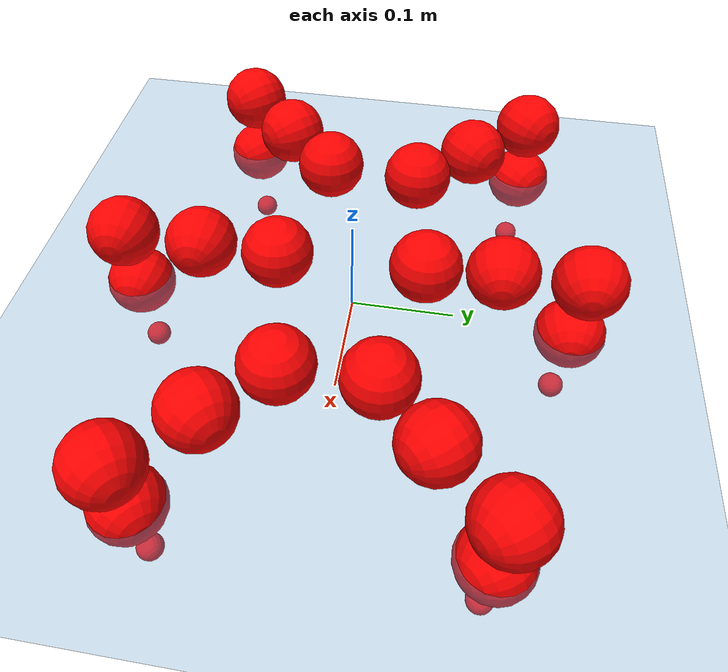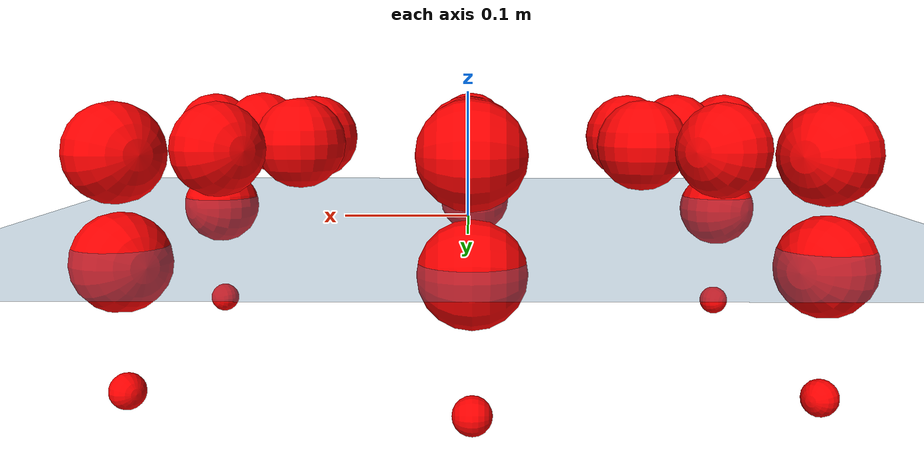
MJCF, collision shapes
<mujoco model="Golem">
  <compiler angle="radian" assetdir="assets" balanceinertia="true" inertiafromgeom="false"/>

  <option timestep="0.005" density="1.2" viscosity="2e-05"/>

  <size nkey="1"/>

  <visual>
    <quality shadowsize="8192"/>
    <map shadowclip="0.5"/>
  </visual>

  <default>
    <default class="/">
      <joint armature="0.01" damping="0.01" frictionloss="0.01"/>
      <geom contype="0" conaffinity="0" group="1" solref="-1000 -80"/>
      <site size="0.01 0.005 0.005" group="5"/>
      <general forcelimited="true" biastype="affine" gainprm="25" biasprm="0 -25 -0.5"/>
      <default class="visual">
        <geom type="mesh" group="2"/>
      </default>
      <default class="collision">
        <geom group="3"/>
      </default>
      <default class="foot">
        <geom size="0.01 0 0" condim="6" group="4" priority="1" solimp="0.015 1 0.01"/>
      </default>
      <default class="reward_collision_sphere">
        <geom group="5" rgba="1 0 0 1"/>
      </default>
    </default>
  </default>

  <asset>
    <texture type="skybox" colorspace="auto" name="//unnamed_texture_0" builtin="gradient" rgb1="0.95 0.95 0.95" rgb2="0.95 0.95 0.95" width="100" height="600"/>
    <texture type="2d" colorspace="auto" name="texplane" builtin="checker" rgb1="0.345 0.575 0.748" rgb2="0.345 0.575 0.748" markrgb="1 1 1" width="512" height="512"/>
    <material name="MatPlane" class="/" texture="texplane" texuniform="true" texrepeat="2 2" specular="0.9"/>
    <mesh name="body" class="/" file="body.stl" scale="0.001 0.001 0.001"/>
    <mesh name="coxa" class="/" file="coxa.stl" scale="0.001 0.001 0.001"/>
    <mesh name="femur" class="/" file="femur.stl" scale="0.001 0.001 0.001"/>
    <mesh name="tibia" class="/" file="tibia.stl" scale="0.001 0.001 0.001"/>
    <mesh name="tarsus" class="/" file="tarsus.stl" scale="0.001 0.001 0.001"/>
  </asset>

  <worldbody>
    <geom name="floor" class="/" size="100 100 0.125" type="plane" group="0" material="MatPlane"/>
    <light name="toplight_shadow" class="/" pos="0 0 5" dir="0.0990148 0.0990148 -0.990148" type="directional" ambient="0.04 0.04 0.04" diffuse="0.55 0.55 0.55" specular="0.12 0.12 0.12"/>
    <light name="toplight_fill" class="/" pos="0 0 5" dir="0.0990148 0.0990148 -0.990148" type="directional" castshadow="false" ambient="0.04 0.04 0.04" diffuse="0.3 0.3 0.3" specular="0.08 0.08 0.08"/>
    <body name="trunk" pos="-0.000867403 0.000126363 -0.00254664" quat="1 1.93912e-05 -5.80358e-05 2.34987e-06">
      <inertial pos="0.000608925 0.00157061 -0.00533191" quat="0.999999 0.000353096 -0.00048486 -0.00119345" mass="2.40583" diaginertia="0.00412571 0.00212181 0.0106598"/>
      <joint name="//unnamed_joint_0" type="free"/>
      <geom name="//unnamed_geom_1" class="/" pos="0 0 0.0646101" quat="1 0 0 0" type="mesh" rgba="0.9 0.9 0.9 1" mesh="body"/>
      <site name="imu" class="/" pos="0.108459 3.5983e-05 0.112213" size="0.00857567"/>
      <camera name="track" class="/" pos="0 -1.46085 0" quat="0.707107 0.707107 0 0" mode="trackcom"/>
      <camera name="ego_camera" class="/" pos="0.108256 0 0.100953" quat="-0.5 -0.5 0.5 0.5"/>
      <body name="coxa_RR" pos="-0.150067 -0.0621347 0.0648435" quat="0.382997 0.00126278 0.000113872 -0.923749">
        <inertial pos="-0.00272566 -0.0009651 0.000376357" quat="0.999934 -0.00161478 -0.0105941 0.00416335" mass="0.124952" diaginertia="0.00400604 0.00206466 0.0100775"/>
        <joint name="coxa_joint_RR" class="/" pos="0 0 0" axis="-0.000155097 -0.00290755 -0.999996" range="-3.14113 3.12076" armature="0.00892179" damping="0.0111669" frictionloss="0.00956648"/>
        <geom name="//unnamed_geom_2" class="/" type="mesh" rgba="0.2 0.2 0.2 1" mesh="coxa"/>
        <geom name="//unnamed_geom_3" class="reward_collision_sphere" size="0.0343027" pos="-0.0249822 0 0"/>
        <body name="femur_RR" pos="0.0487858 0.00133197 -5.07836e-05" quat="0.500001 -0.499999 0.499999 0.500001">
          <inertial pos="-0.000273624 0.00011922 0.00247693" quat="1 0.000590289 -1.90041e-05 -1.76655e-05" mass="0.126781" diaginertia="0.00401392 0.00209381 0.0102098"/>
          <joint name="femur_joint_RR" class="/" pos="0 0 0" axis="0.00928545 -0.00493944 -0.999945" range="-3.15869 3.14395" armature="0.00848644" damping="0.0011691" frictionloss="0.008954"/>
          <geom name="//unnamed_geom_4" class="/" type="mesh" rgba="0.9 0.9 0.9 1" mesh="femur"/>
          <geom name="//unnamed_geom_5" class="reward_collision_sphere" size="0.0343027"/>
          <body name="tibia_RR" pos="0.000752525 -0.0785346 -0.000225125" quat="3.55968e-05 1 -4.02869e-05 -3.52313e-05">
            <inertial pos="-0.000143607 0.002507 -0.00254442" quat="0.999931 -0.011467 0.00200918 0.0017145" mass="0.125316" diaginertia="0.00387835 0.00208274 0.0103227"/>
            <joint name="tibia_joint_RR" class="/" pos="0 0 0" axis="0.000371066 -0.000361207 1" stiffness="0.00216246" range="-3.13857 3.10655" armature="0.00839766" damping="0.00616895" frictionloss="0.00839532"/>
            <geom name="//unnamed_geom_6" class="/" type="mesh" rgba="0.2 0.2 0.2 1" mesh="tibia"/>
            <geom name="//unnamed_geom_7" class="reward_collision_sphere" size="0.0343027"/>
            <body name="tarsus_RR" pos="0.0735062 -0.00267421 -0.00282244" quat="0.999999 -0.00104753 0.000456394 0.000544384">
              <inertial pos="0.0487432 -0.00223393 -0.000261498" quat="0.502034 0.497161 0.502882 0.497898" mass="0.123416" diaginertia="0.00402492 0.00215568 0.0106619"/>
              <joint name="tarsus_joint_RR" class="/" pos="0 0 0" axis="-0.00171981 0.00387312 0.999991" range="-3.13563 3.13875" armature="0.00833078" damping="0" frictionloss="0.0089009"/>
              <geom name="//unnamed_geom_8" class="/" type="mesh" rgba="0.9 0.9 0.9 1" mesh="tarsus"/>
              <geom name="foot_1" class="foot" size="0.00855253" pos="0.0932669 0 0" quat="0 -0.707107 0 0.707107"/>
              <geom name="//unnamed_geom_10" class="reward_collision_sphere" size="0.0343027"/>
              <geom name="//unnamed_geom_11" class="reward_collision_sphere" size="0.0128635" pos="0.0895196 0 0"/>
              <site name="foot_1" class="foot" pos="0.0932669 0 0" quat="0 -0.707107 0 0.707107" size="0.00857567"/>
            </body>
          </body>
        </body>
      </body>
      <body name="coxa_RM" pos="0.00184178 -0.0965254 0.0638479" quat="0.707034 -0.000106457 -0.000151738 -0.70718">
        <inertial pos="1.96072e-05 -0.000944668 -0.00236741" quat="0.999989 0.00210397 -0.00390385 0.00177907" mass="0.123643" diaginertia="0.0038262 0.00197302 0.0101959"/>
        <joint name="coxa_joint_RM" class="/" pos="0 0 0" axis="-0.000171567 0.00384621 -0.999993" range="-3.13504 3.1521" armature="0.00857519" damping="0.0139751" frictionloss="0.0090456"/>
        <geom name="//unnamed_geom_12" class="/" type="mesh" rgba="0.2 0.2 0.2 1" mesh="coxa"/>
        <geom name="//unnamed_geom_13" class="reward_collision_sphere" size="0.0343027" pos="-0.0249822 0 0"/>
        <body name="femur_RM" pos="0.0500615 -0.00188338 -0.00102724" quat="0.499085 -0.500365 0.499895 0.500654">
          <inertial pos="0.000958146 -0.00131029 0.000392633" quat="0.999916 -0.00715967 0.00872264 0.00642474" mass="0.124303" diaginertia="0.0041152 0.00207453 0.0103904"/>
          <joint name="femur_joint_RM" class="/" pos="0 0 0" axis="-0.000937531 -0.0032076 -0.999994" stiffness="0.00132342" range="-3.18377 3.18349" armature="0.00969954" damping="0.0248133" frictionloss="0.00834061"/>
          <geom name="//unnamed_geom_14" class="/" type="mesh" rgba="0.9 0.9 0.9 1" mesh="femur"/>
          <geom name="//unnamed_geom_15" class="reward_collision_sphere" size="0.0343027"/>
          <body name="tibia_RM" pos="-0.00155813 -0.0779309 -0.000747064" quat="-4.96718e-05 1 2.40824e-05 0.00018521">
            <inertial pos="0.000774647 0.000384692 -0.00234853" quat="0.999945 -0.00222762 0.00986393 -0.00292334" mass="0.118856" diaginertia="0.00386777 0.00202319 0.010511"/>
            <joint name="tibia_joint_RM" class="/" pos="0 0 0" axis="-0.00260527 0.00491171 0.999985" stiffness="0.00438733" range="-3.18204 3.09472" armature="0.00763903" damping="0" frictionloss="0.00889229"/>
            <geom name="//unnamed_geom_16" class="/" type="mesh" rgba="0.2 0.2 0.2 1" mesh="tibia"/>
            <geom name="//unnamed_geom_17" class="reward_collision_sphere" size="0.0343027"/>
            <body name="tarsus_RM" pos="0.0734361 -0.00149029 0.0032023" quat="1 1.41736e-05 -4.38446e-05 4.54686e-05">
              <inertial pos="0.0502948 0.000598847 0.00047424" quat="0.497792 0.494259 0.505823 0.50205" mass="0.126401" diaginertia="0.00406132 0.00208193 0.0106381"/>
              <joint name="tarsus_joint_RM" class="/" pos="0 0 0" axis="0.00205827 0.00329615 0.999992" range="-3.13505 3.19089" armature="0.00873071" damping="0" frictionloss="0.00897342"/>
              <geom name="//unnamed_geom_18" class="/" type="mesh" rgba="0.9 0.9 0.9 1" mesh="tarsus"/>
              <geom name="foot_2" class="foot" size="0.00781844" pos="0.0932669 0 0" quat="0 -0.707107 0 0.707107"/>
              <geom name="//unnamed_geom_20" class="reward_collision_sphere" size="0.0343027"/>
              <geom name="//unnamed_geom_21" class="reward_collision_sphere" size="0.0128635" pos="0.0895196 0 0"/>
              <site name="foot_2" class="foot" pos="0.0932669 0 0" quat="0 -0.707107 0 0.707107" size="0.00857567"/>
            </body>
          </body>
        </body>
      </body>
      <body name="coxa_RF" pos="0.146982 -0.0602765 0.0642703" quat="0.924363 1.5261e-05 0.000165557 -0.381515">
        <inertial pos="0.0025428 -0.00237757 0.00128282" quat="0.999986 0.00216335 0.00208874 0.00431462" mass="0.126653" diaginertia="0.00410339 0.00206745 0.0105009"/>
        <joint name="coxa_joint_RF" class="/" pos="0 0 0" axis="-0.00428455 0.00704058 -0.999966" range="-3.13853 3.1549" armature="0.00864116" damping="0" frictionloss="0.00875787"/>
        <geom name="//unnamed_geom_22" class="/" type="mesh" rgba="0.2 0.2 0.2 1" mesh="coxa"/>
        <geom name="//unnamed_geom_23" class="reward_collision_sphere" size="0.0343027" pos="-0.0249822 0 0"/>
        <body name="femur_RF" pos="0.0497734 0.00225562 0.00231802" quat="0.499307 -0.499381 0.500936 0.500374">
          <inertial pos="-0.000422206 6.25315e-05 0.000188727" quat="0.999993 0.00318035 0.00197956 0.000164988" mass="0.12629" diaginertia="0.00400467 0.00206834 0.0104356"/>
          <joint name="femur_joint_RF" class="/" pos="0 0 0" axis="0.00493244 0.00145852 -0.999987" range="-3.13399 3.1504" armature="0.00884317" damping="0.0119723" frictionloss="0.00834159"/>
          <geom name="//unnamed_geom_24" class="/" type="mesh" rgba="0.9 0.9 0.9 1" mesh="femur"/>
          <geom name="//unnamed_geom_25" class="reward_collision_sphere" size="0.0343027"/>
          <body name="tibia_RF" pos="0.0014063 -0.0787205 5.00307e-05" quat="-0.000395951 1 0.000287918 0.000251515">
            <inertial pos="-0.000195095 -0.00189025 -0.000380721" quat="0.999999 0.000997601 -0.000742042 -0.000484021" mass="0.121796" diaginertia="0.00388785 0.00199658 0.0104599"/>
            <joint name="tibia_joint_RF" class="/" pos="0 0 0" axis="0.00420745 0.00074815 0.999991" stiffness="0.00283556" range="-3.13319 3.09379" armature="0.00851667" damping="0" frictionloss="0.00861688"/>
            <geom name="//unnamed_geom_26" class="/" type="mesh" rgba="0.2 0.2 0.2 1" mesh="tibia"/>
            <geom name="//unnamed_geom_27" class="reward_collision_sphere" size="0.0343027"/>
            <body name="tarsus_RF" pos="0.0712359 -0.00294866 0.00102218" quat="1 -0.000238992 -0.000310812 -0.000600027">
              <inertial pos="0.0492519 0.000614395 -0.00112696" quat="0.500636 0.499885 0.499673 0.499805" mass="0.128314" diaginertia="0.00401179 0.00215495 0.0106167"/>
              <joint name="tarsus_joint_RF" class="/" pos="0 0 0" axis="0.000551091 -0.00371877 0.999993" range="-3.14923 3.15946" armature="0.00814012" damping="0" frictionloss="0.00880718"/>
              <geom name="//unnamed_geom_28" class="/" type="mesh" rgba="0.9 0.9 0.9 1" mesh="tarsus"/>
              <geom name="foot_3" class="foot" size="0.00830264" pos="0.0932669 0 0" quat="0 -0.707107 0 0.707107"/>
              <geom name="//unnamed_geom_30" class="reward_collision_sphere" size="0.0343027"/>
              <geom name="//unnamed_geom_31" class="reward_collision_sphere" size="0.0128635" pos="0.0895196 0 0"/>
              <site name="foot_3" class="foot" pos="0.0932669 0 0" quat="0 -0.707107 0 0.707107" size="0.00857567"/>
            </body>
          </body>
        </body>
      </body>
      <body name="coxa_LR" pos="-0.148998 0.0648187 0.0627687" quat="0.382801 -0.000108361 0.00010155 0.923831">
        <inertial pos="0.000467326 0.000421545 -0.00144005" quat="0.999969 -0.00705984 0.0034239 0.000174964" mass="0.122548" diaginertia="0.00387107 0.0020611 0.0101998"/>
        <joint name="coxa_joint_LR" class="/" pos="0 0 0" axis="0.00352696 -0.00423756 -0.999985" stiffness="0.00400678" range="-3.13546 3.15259" armature="0.00836893" damping="0.0163451" frictionloss="0.0093879"/>
        <geom name="//unnamed_geom_32" class="/" type="mesh" rgba="0.2 0.2 0.2 1" mesh="coxa"/>
        <geom name="//unnamed_geom_33" class="reward_collision_sphere" size="0.0343027" pos="-0.0249822 0 0"/>
        <body name="femur_LR" pos="0.0487751 -0.00364531 -7.61399e-05" quat="0.499652 -0.500361 0.499676 0.50031">
          <inertial pos="-0.000558602 -2.55577e-05 -0.00281423" quat="0.999998 -0.000877174 -0.00147609 -0.000896622" mass="0.122964" diaginertia="0.00388325 0.00201395 0.0101271"/>
          <joint name="femur_joint_LR" class="/" pos="0 0 0" axis="-0.00822633 0.0101973 0.999914" range="-3.14723 3.1372" armature="0.00902931" damping="0.0102796" frictionloss="0.00877656"/>
          <geom name="//unnamed_geom_34" class="/" type="mesh" rgba="0.9 0.9 0.9 1" mesh="femur"/>
          <geom name="//unnamed_geom_35" class="reward_collision_sphere" size="0.0343027"/>
          <body name="tibia_LR" pos="-0.00119374 -0.0801128 -0.00222274" quat="7.51314e-05 1 5.06346e-05 -5.04327e-05">
            <inertial pos="-1.1988e-05 0.00248613 -0.000474015" quat="0.999986 -0.0014405 0.00268111 0.00428193" mass="0.127452" diaginertia="0.00391617 0.0020988 0.0108859"/>
            <joint name="tibia_joint_LR" class="/" pos="0 0 0" axis="0.00435721 0.0115431 -0.999924" range="-3.09852 3.08632" armature="0.00969645" damping="0" frictionloss="0.00917463"/>
            <geom name="//unnamed_geom_36" class="/" type="mesh" rgba="0.2 0.2 0.2 1" mesh="tibia"/>
            <geom name="//unnamed_geom_37" class="reward_collision_sphere" size="0.0343027"/>
            <body name="tarsus_LR" pos="0.0740617 0.00149334 0.000952984" quat="1 0.000235311 0.00018939 -0.000454207">
              <inertial pos="0.0529067 0.000942553 -0.0024311" quat="0.499997 0.500052 0.499966 0.499985" mass="0.125773" diaginertia="0.0040502 0.00209054 0.0103286"/>
              <joint name="tarsus_joint_LR" class="/" pos="0 0 0" axis="0.000876238 -0.00256772 -0.999996" range="-3.12079 3.12648" armature="0.00781614" damping="0.015032" frictionloss="0.00851092"/>
              <geom name="//unnamed_geom_38" class="/" type="mesh" rgba="0.9 0.9 0.9 1" mesh="tarsus"/>
              <geom name="foot_4" class="foot" size="0.00871671" pos="0.0932669 0 0" quat="0.707107 0 -0.707107 0"/>
              <geom name="//unnamed_geom_40" class="reward_collision_sphere" size="0.0343027"/>
              <geom name="//unnamed_geom_41" class="reward_collision_sphere" size="0.0128635" pos="0.0895196 0 0"/>
              <site name="foot_4" class="foot" pos="0.0932669 0 0" quat="0.707107 0 -0.707107 0" size="0.00857567"/>
            </body>
          </body>
        </body>
      </body>
      <body name="coxa_LM" pos="9.87435e-07 0.0933169 0.0660907" quat="0.70683 7.85561e-05 -0.000134152 0.707384">
        <inertial pos="0.000333211 -0.00251857 0.00269133" quat="1 0.000216161 -0.000700811 0.000334664" mass="0.129255" diaginertia="0.0040904 0.00210427 0.010695"/>
        <joint name="coxa_joint_LM" class="/" pos="0 0 0" axis="-0.00740182 0.00792925 -0.999941" range="-3.14779 3.15285" armature="0.00746931" damping="0.00847617" frictionloss="0.00853654"/>
        <geom name="//unnamed_geom_42" class="/" type="mesh" rgba="0.2 0.2 0.2 1" mesh="coxa"/>
        <geom name="//unnamed_geom_43" class="reward_collision_sphere" size="0.0343027" pos="-0.0249822 0 0"/>
        <body name="femur_LM" pos="0.0455925 0.00281205 0.000490281" quat="0.499995 -0.500007 0.500001 0.499997">
          <inertial pos="-0.00264677 0.000731271 -0.00124763" quat="0.999997 0.00011444 0.00176205 -0.00149612" mass="0.121774" diaginertia="0.0039198 0.00202904 0.0100157"/>
          <joint name="femur_joint_LM" class="/" pos="0 0 0" axis="0.0137384 0.00475166 0.999894" stiffness="0.00356838" range="-3.1359 3.13533" armature="0.00890722" damping="0.00482091" frictionloss="0.00942197"/>
          <geom name="//unnamed_geom_44" class="/" type="mesh" rgba="0.9 0.9 0.9 1" mesh="femur"/>
          <geom name="//unnamed_geom_45" class="reward_collision_sphere" size="0.0343027"/>
          <body name="tibia_LM" pos="-0.000517001 -0.0775557 -0.000345453" quat="0.000116233 1 -0.000464067 -0.000115479">
            <inertial pos="-0.00118635 -0.000174953 0.0017779" quat="0.999951 0.00603985 0.00783791 0.00036653" mass="0.12264" diaginertia="0.00397303 0.00208735 0.0102438"/>
            <joint name="tibia_joint_LM" class="/" pos="0 0 0" axis="0.00279494 -0.00437423 -0.999987" stiffness="0.00175513" range="-3.14509 3.18714" armature="0.00803272" damping="0" frictionloss="0.00852268"/>
            <geom name="//unnamed_geom_46" class="/" type="mesh" rgba="0.2 0.2 0.2 1" mesh="tibia"/>
            <geom name="//unnamed_geom_47" class="reward_collision_sphere" size="0.0343027"/>
            <body name="tarsus_LM" pos="0.0730852 -0.00241284 -0.000378822" quat="1 -2.08059e-06 3.34446e-05 9.5835e-06">
              <inertial pos="0.0525722 0.00148032 0.000906903" quat="0.500218 0.499841 0.500032 0.499909" mass="0.125608" diaginertia="0.0040597 0.00210245 0.0106481"/>
              <joint name="tarsus_joint_LM" class="/" pos="0 0 0" axis="-0.00357907 -0.000802179 -0.999993" range="-3.14792 3.1276" armature="0.00868338" damping="0" frictionloss="0.00901809"/>
              <geom name="//unnamed_geom_48" class="/" type="mesh" rgba="0.9 0.9 0.9 1" mesh="tarsus"/>
              <geom name="foot_5" class="foot" size="0.00862437" pos="0.0932669 0 0" quat="0.707107 0 -0.707107 0"/>
              <geom name="//unnamed_geom_50" class="reward_collision_sphere" size="0.0343027"/>
              <geom name="//unnamed_geom_51" class="reward_collision_sphere" size="0.0128635" pos="0.0895196 0 0"/>
              <site name="foot_5" class="foot" pos="0.0932669 0 0" quat="0.707107 0 -0.707107 0" size="0.00857567"/>
            </body>
          </body>
        </body>
      </body>
      <body name="coxa_LF" pos="0.146449 0.0609322 0.0643114" quat="0.923701 -0.00034502 0.000140263 0.383114">
        <inertial pos="0.00211685 -0.000432547 -0.000513877" quat="0.999918 -0.00273573 0.00279955 -0.0121979" mass="0.126916" diaginertia="0.0041327 0.00205004 0.010486"/>
        <joint name="coxa_joint_LF" class="/" pos="0 0 0" axis="-0.00325207 0.00113481 -0.999994" range="-3.15078 3.09025" armature="0.00841417" damping="0.0133694" frictionloss="0.00845797"/>
        <geom name="//unnamed_geom_52" class="/" type="mesh" rgba="0.2 0.2 0.2 1" mesh="coxa"/>
        <geom name="//unnamed_geom_53" class="reward_collision_sphere" size="0.0343027" pos="-0.0249822 0 0"/>
        <body name="femur_LF" pos="0.0474959 -0.000163274 -0.00124897" quat="0.500133 -0.499786 0.499686 0.500395">
          <inertial pos="-0.00220364 0.00141609 -0.000444539" quat="0.999998 0.000737866 -0.00122782 -0.00109939" mass="0.127484" diaginertia="0.00389436 0.00208649 0.0104551"/>
          <joint name="femur_joint_LF" class="/" pos="0 0 0" axis="-0.00290934 0.0135911 0.999903" range="-3.18896 3.14751" armature="0.0085745" damping="0" frictionloss="0.00853732"/>
          <geom name="//unnamed_geom_54" class="/" type="mesh" rgba="0.9 0.9 0.9 1" mesh="femur"/>
          <geom name="//unnamed_geom_55" class="reward_collision_sphere" size="0.0343027"/>
          <body name="tibia_LF" pos="-0.00136336 -0.0794871 0.00290908" quat="0.000358367 1 0.000732762 -5.6589e-05">
            <inertial pos="-0.00214236 0.000474211 0.000393349" quat="0.999914 -0.00391729 -0.0107066 -0.00642642" mass="0.130216" diaginertia="0.00393622 0.00207192 0.0105842"/>
            <joint name="tibia_joint_LF" class="/" pos="0 0 0" axis="-0.00142017 -0.00240503 -0.999996" range="-3.14151 3.13629" armature="0.00877692" damping="0.004107" frictionloss="0.00891704"/>
            <geom name="//unnamed_geom_56" class="/" type="mesh" rgba="0.2 0.2 0.2 1" mesh="tibia"/>
            <geom name="//unnamed_geom_57" class="reward_collision_sphere" size="0.0343027"/>
            <body name="tarsus_LF" pos="0.0738424 -0.00187124 0.000696209" quat="1 -1.46057e-05 0.000151109 -5.19695e-05">
              <inertial pos="0.0495255 0.00073801 -0.00190106" quat="0.495738 0.501133 0.502943 0.500159" mass="0.118418" diaginertia="0.00386246 0.00200912 0.0100856"/>
              <joint name="tarsus_joint_LF" class="/" pos="0 0 0" axis="-0.000844205 0.00061581 -0.999999" range="-3.11853 3.14618" armature="0.00852565" damping="0.0229273" frictionloss="0.00880079"/>
              <geom name="//unnamed_geom_58" class="/" type="mesh" rgba="0.9 0.9 0.9 1" mesh="tarsus"/>
              <geom name="foot_6" class="foot" size="0.0090424" pos="0.0932669 0 0" quat="0.707107 0 -0.707107 0"/>
              <geom name="//unnamed_geom_60" class="reward_collision_sphere" size="0.0343027"/>
              <geom name="//unnamed_geom_61" class="reward_collision_sphere" size="0.0128635" pos="0.0895196 0 0"/>
              <site name="foot_6" class="foot" pos="0.0932669 0 0" quat="0.707107 0 -0.707107 0" size="0.00857567"/>
            </body>
          </body>
        </body>
      </body>
    </body>
  </worldbody>

  <contact>
    <pair class="/" geom1="floor" geom2="foot_1" name="//unnamed_contact_0"/>
    <pair class="/" geom1="floor" geom2="foot_2" name="//unnamed_contact_1"/>
    <pair class="/" geom1="floor" geom2="foot_3" name="//unnamed_contact_2"/>
    <pair class="/" geom1="floor" geom2="foot_4" name="//unnamed_contact_3"/>
    <pair class="/" geom1="floor" geom2="foot_5" name="//unnamed_contact_4"/>
    <pair class="/" geom1="floor" geom2="foot_6" name="//unnamed_contact_5"/>
  </contact>

  <actuator>
    <general name="coxa_joint_RR" class="/" joint="coxa_joint_RR" forcerange="-6.17639 6.17639" gainprm="20.9911" biasprm="0 -20.9911 -0.458911"/>
    <general name="femur_joint_RR" class="/" joint="femur_joint_RR" forcerange="-6.51975 6.51975" gainprm="20.9911" biasprm="0 -20.9911 -0.458911"/>
    <general name="tibia_joint_RR" class="/" joint="tibia_joint_RR" forcerange="-5.71542 5.71542" gainprm="20.9911" biasprm="0 -20.9911 -0.458911"/>
    <general name="tarsus_joint_RR" class="/" joint="tarsus_joint_RR" forcerange="-6.15636 6.15636" gainprm="20.9911" biasprm="0 -20.9911 -0.458911"/>
    <general name="coxa_joint_RM" class="/" joint="coxa_joint_RM" forcerange="-6.87248 6.87248" gainprm="20.9911" biasprm="0 -20.9911 -0.458911"/>
    <general name="femur_joint_RM" class="/" joint="femur_joint_RM" forcerange="-6.14471 6.14471" gainprm="20.9911" biasprm="0 -20.9911 -0.458911"/>
    <general name="tibia_joint_RM" class="/" joint="tibia_joint_RM" forcerange="-6.18366 6.18366" gainprm="20.9911" biasprm="0 -20.9911 -0.458911"/>
    <general name="tarsus_joint_RM" class="/" joint="tarsus_joint_RM" forcerange="-5.71121 5.71121" gainprm="20.9911" biasprm="0 -20.9911 -0.458911"/>
    <general name="coxa_joint_RF" class="/" joint="coxa_joint_RF" forcerange="-6.7571 6.7571" gainprm="20.9911" biasprm="0 -20.9911 -0.458911"/>
    <general name="femur_joint_RF" class="/" joint="femur_joint_RF" forcerange="-6.25731 6.25731" gainprm="20.9911" biasprm="0 -20.9911 -0.458911"/>
    <general name="tibia_joint_RF" class="/" joint="tibia_joint_RF" forcerange="-6.18442 6.18442" gainprm="20.9911" biasprm="0 -20.9911 -0.458911"/>
    <general name="tarsus_joint_RF" class="/" joint="tarsus_joint_RF" forcerange="-6.23611 6.23611" gainprm="20.9911" biasprm="0 -20.9911 -0.458911"/>
    <general name="coxa_joint_LR" class="/" joint="coxa_joint_LR" forcerange="-6.85815 6.85815" gainprm="20.9911" biasprm="0 -20.9911 -0.458911"/>
    <general name="femur_joint_LR" class="/" joint="femur_joint_LR" forcerange="-6.26612 6.26612" gainprm="20.9911" biasprm="0 -20.9911 -0.458911"/>
    <general name="tibia_joint_LR" class="/" joint="tibia_joint_LR" forcerange="-6.66832 6.66832" gainprm="20.9911" biasprm="0 -20.9911 -0.458911"/>
    <general name="tarsus_joint_LR" class="/" joint="tarsus_joint_LR" forcerange="-6.87455 6.87455" gainprm="20.9911" biasprm="0 -20.9911 -0.458911"/>
    <general name="coxa_joint_LM" class="/" joint="coxa_joint_LM" forcerange="-5.73013 5.73013" gainprm="20.9911" biasprm="0 -20.9911 -0.458911"/>
    <general name="femur_joint_LM" class="/" joint="femur_joint_LM" forcerange="-6.05004 6.05004" gainprm="20.9911" biasprm="0 -20.9911 -0.458911"/>
    <general name="tibia_joint_LM" class="/" joint="tibia_joint_LM" forcerange="-6.84117 6.84117" gainprm="20.9911" biasprm="0 -20.9911 -0.458911"/>
    <general name="tarsus_joint_LM" class="/" joint="tarsus_joint_LM" forcerange="-6.87822 6.87822" gainprm="20.9911" biasprm="0 -20.9911 -0.458911"/>
    <general name="coxa_joint_LF" class="/" joint="coxa_joint_LF" forcerange="-5.87664 5.87664" gainprm="20.9911" biasprm="0 -20.9911 -0.458911"/>
    <general name="femur_joint_LF" class="/" joint="femur_joint_LF" forcerange="-5.90809 5.90809" gainprm="20.9911" biasprm="0 -20.9911 -0.458911"/>
    <general name="tibia_joint_LF" class="/" joint="tibia_joint_LF" forcerange="-6.45606 6.45606" gainprm="20.9911" biasprm="0 -20.9911 -0.458911"/>
    <general name="tarsus_joint_LF" class="/" joint="tarsus_joint_LF" forcerange="-6.23836 6.23836" gainprm="20.9911" biasprm="0 -20.9911 -0.458911"/>
  </actuator>

  <sensor>
    <gyro site="imu" name="imu_angular_velocity"/>
    <velocimeter site="imu" name="imu_linear_velocity"/>
    <framelinvel objtype="site" objname="foot_1" name="foot_1_global_linear_velocity"/>
    <framelinvel objtype="site" objname="foot_2" name="foot_2_global_linear_velocity"/>
    <framelinvel objtype="site" objname="foot_3" name="foot_3_global_linear_velocity"/>
    <framelinvel objtype="site" objname="foot_4" name="foot_4_global_linear_velocity"/>
    <framelinvel objtype="site" objname="foot_5" name="foot_5_global_linear_velocity"/>
    <framelinvel objtype="site" objname="foot_6" name="foot_6_global_linear_velocity"/>
  </sensor>

  <keyframe>
    <key name="home" qpos="0 0 0.1457 1 0 0 0 0 0 0 0 0 0 0 0 0 0 0 0 0 0 0 0 0 0 0 0 0 0 0 0"/>
  </keyframe>
</mujoco>
